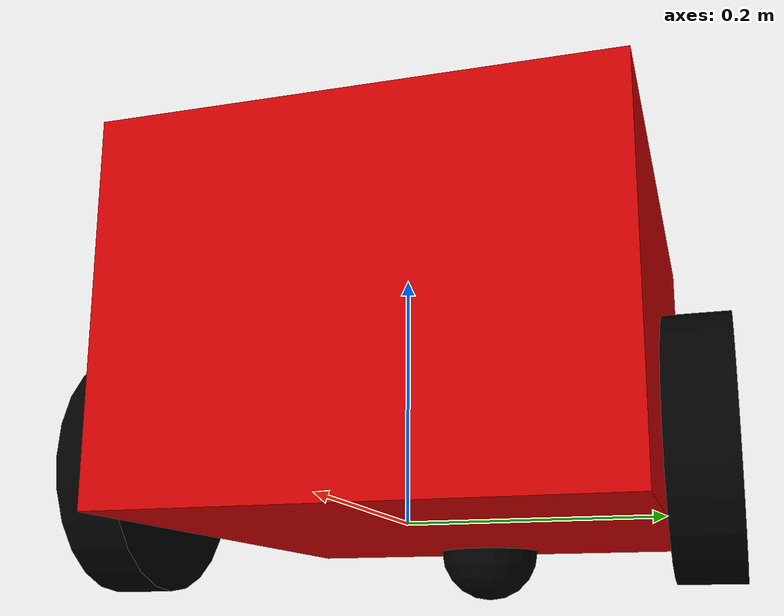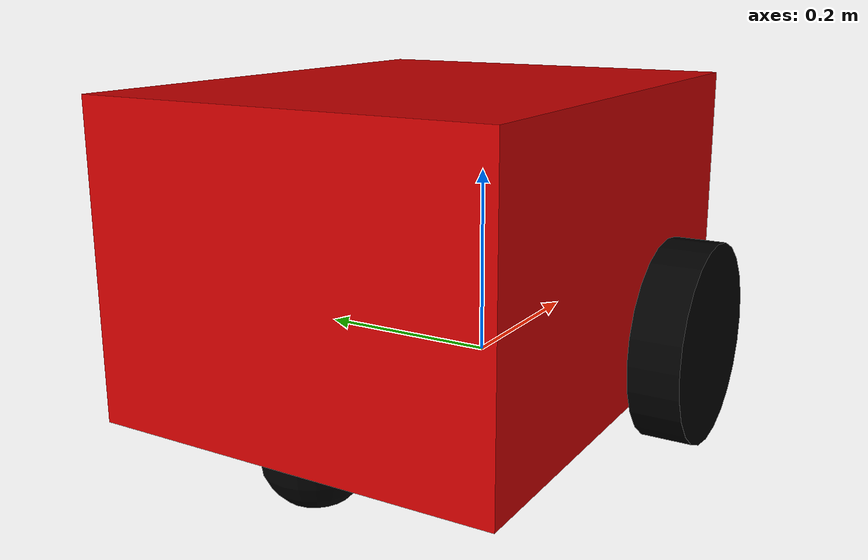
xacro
<?xml version="1.0"?>
<robot name="wheeled_robot" xmlns:xacro="http://ros.org/wiki/xacro">

  <xacro:arg name="namespace" default="" />
  <xacro:arg name="use_imu" default="false" />
  <xacro:arg name="use_lidar" default="false" />
  <xacro:arg name="use_rgb" default="false" />
  <xacro:arg name="use_rgbd" default="false" />
  <xacro:arg name="use_arms" default="false" />
  <xacro:arg name="use_pantilt" default="false" />

  <xacro:include filename="$(find marr_gz)/urdf/inertia.xacro" />
  <xacro:include filename="$(find marr_gz)/urdf/sensors.xacro" />
  <xacro:include filename="$(find marr_gz)/urdf/arms.xacro" />
  <xacro:include filename="$(find marr_gz)/urdf/pantilt.xacro" />

  <xacro:property name="friction" value="0.01" />
  <xacro:property name="damping" value="0.05" />
  <xacro:property name="max_effort" value="1000.0" />
  <xacro:property name="max_velocity" value="10.0" />

  <material name="orange"><color rgba="1.0 0.33 0.0 1.0"/></material>
  <material name="red"><color rgba="0.8 0 0 1"/></material>
  <material name="green"><color rgba="0 1 0 1"/></material>
  <material name="blue"><color rgba="0 0 1 1"/></material>
  <material name="black"><color rgba="0 0 0 1.0"/></material>
  <material name="grey"><color rgba="0.7 0.7 0.7 1.0"/></material>
  <material name="white"><color rgba="1 1 1 1.0"/></material>

  <link name="base_footprint"/>

  <link name="base_link">
    <visual>
        <geometry>
            <box size="0.5 0.4 0.3"/>
        </geometry>
        <origin xyz="0.0 0.0 0.0" rpy="0.0 0.0 0.0"/>
        <material name="red"/>
    </visual>
    <collision>
        <geometry>
            <box size="0.5 0.4 0.3"/>
        </geometry>
        <origin xyz="0.0 0.0 0.0" rpy="0.0 0.0 0.0"/>
    </collision>
    <xacro:box_inertial mass="0.2" x_dim="0.5" y_dim="0.4" z_dim="0.3"/>
  </link>

  <!-- to balance weight on the bottom and between the wheels -->
  <link name="battery_link">
    <visual>
        <geometry>
            <box size="0.1 0.2 0.1"/>
        </geometry>
        <origin xyz="0.0 0.0 0.0" rpy="0.0 0.0 0.0"/>
        <material name="black"/>
    </visual>
    <collision>
        <geometry>
            <box size="0.1 0.2 0.1"/>
        </geometry>
        <origin xyz="0.0 0.0 0.0" rpy="0.0 0.0 0.0"/>
    </collision>
    <xacro:box_inertial mass="0.5" x_dim="0.1" y_dim="0.2" z_dim="0.1"/>
  </link>

  <link name="left_wheel">
    <visual>
        <geometry>
            <cylinder radius="0.1" length="0.05"/>
        </geometry>
        <origin xyz="0.0 0.0 0.0" rpy="1.57 0.0 0.0"/>
        <material name="black"/>
    </visual>
    <collision>
        <geometry>
            <cylinder radius="0.1" length="0.05"/>
        </geometry>
        <origin xyz="0.0 0.0 0.0" rpy="1.57 0.0 0.0"/>
        <surface>
          <friction>
            <ode>
              <mu>1.0</mu>
              <mu2>1.0</mu2>
            </ode>
            <torsional>
              <ode/>
            </torsional>
          </friction>
        </surface>
    </collision>
    <xacro:cylinder_inertial mass="0.3" radius="0.1" length="0.05"/>
  </link>

  <link name="right_wheel">
    <visual>
        <geometry>
            <cylinder radius="0.1" length="0.05"/>
        </geometry>
        <origin xyz="0.0 0.0 0.0" rpy="1.57 0.0 0.0"/>
        <material name="black"/>
    </visual>
    <collision>
        <geometry>
            <cylinder radius="0.1" length="0.05"/>
        </geometry>
        <origin xyz="0.0 0.0 0.0" rpy="1.57 0.0 0.0"/>
        <surface>
          <friction>
            <ode>
              <mu>1.0</mu>
              <mu2>1.0</mu2>
            </ode>
            <torsional>
              <ode/>
            </torsional>
          </friction>
        </surface>
    </collision>
    <xacro:cylinder_inertial mass="0.3" radius="0.1" length="0.05"/>
  </link>

  <link name="caster_wheel">
    <visual>
        <geometry>
            <sphere radius="0.05"/>
        </geometry>
        <origin xyz="0.0 0.0 0.0" rpy="0.0 0.0 0.0"/>
        <material name="black"/>
    </visual>
    <collision>
        <geometry>
            <sphere radius="0.05"/>
        </geometry>
        <origin xyz="0.0 0.0 0.0" rpy="0.0 0.0 0.0"/>
        <surface>
          <friction>
            <ode>
              <mu>0.001</mu>
              <mu2>0.001</mu2>
            </ode>
            <torsional>
              <ode/>
            </torsional>
          </friction>
        </surface>
    </collision>
    <xacro:sphere_inertial mass="0.1" radius="0.05" />
  </link>

  <joint name="base_joint" type="fixed">
    <parent link="base_footprint"/>
    <child link="base_link"/>
    <origin xyz="-0.1 0.0 0.15" rpy="0.0 0.0 0.0"/>
  </joint>

  <joint name="battery_joint" type="fixed">
    <parent link="base_link"/>
    <child link="battery_link"/>
    <origin xyz="0.1 0.0 -0.08" rpy="0.0 0.0 0.0"/>
  </joint>

  <joint name="left_wheel_joint" type="continuous">
    <parent link="base_link"/>
    <child link="left_wheel"/>
    <origin xyz="0.1 0.23 -0.1" rpy="0 0.0 0.0"/>
    <axis xyz="0.0 1.0 0.0"/>
    <dynamics damping="0.2" friction="1.0"/>
    <limit effort="100" velocity="10.0"/>
  </joint>

  <joint name="right_wheel_joint" type="continuous">
    <parent link="base_link"/>
    <child link="right_wheel"/>
    <origin xyz="0.1 -0.23 -0.1" rpy="0 0.0 0.0"/>
    <axis xyz="0.0 1.0 0.0"/>
    <dynamics damping="0.2" friction="1.0"/>
    <limit effort="100" velocity="10.0"/>
  </joint>

  <joint name="caster_wheel_joint" type="fixed">
    <parent link="base_link"/>
    <child link="caster_wheel"/>
    <origin xyz="-0.2 0.0 -0.15" rpy="0.0 0.0 0.0"/>
  </joint>

  <xacro:if value="$(arg use_arms)">
    <xacro:arms />
  </xacro:if>

  <xacro:if value="$(arg use_pantilt)">
    <xacro:pantilt parent="base_link" x="0.0" y="0.0" z="0.152" />
  </xacro:if>

  <!-- sensors -->

  <xacro:if value="$(arg use_imu)">
    <xacro:imu parent="base_link" x="-0.1" y="0.0" z="0.152" />
  </xacro:if>

  <xacro:if value="$(arg use_lidar)">
    <xacro:lidar parent="base_link" x="0.1" y="0.0" z="0.155" />
  </xacro:if>

  <xacro:property name="u_rgb" value="$(arg use_rgb)"/>
  <xacro:property name="u_rgbd" value="$(arg use_rgbd)"/>
  <xacro:property name="u_pantilt" value="$(arg use_pantilt)"/>

  <xacro:if value="${u_rgb and u_pantilt}">
    <xacro:rgb parent="pantilt_tip_link" x="0.0" y="0.0" z="0.013" p="0" />
  </xacro:if>

  <xacro:if value="${u_rgb and not u_pantilt}">
    <xacro:camera_base parent="base_link" x="0.0" y="0.0" z="0.152" />
    <xacro:rgb parent="pantilt_tip_link" x="0.0" y="0.0" z="0.013" p="0" />
  </xacro:if>

  <xacro:if value="${u_rgbd and u_pantilt}">
    <xacro:rgbd parent="pantilt_tip_link" x="0.0" y="0.0" z="0.013" p="0" />
  </xacro:if>

  <xacro:if value="${u_rgbd and not u_pantilt}">
    <xacro:camera_base parent="base_link" x="0.0" y="0.0" z="0.152" />
    <xacro:rgbd parent="pantilt_tip_link" x="0.0" y="0.0" z="0.013" p="0" />
  </xacro:if>

  <ros2_control name="GazeboSimSystem" type="system">
    <hardware>
      <plugin>gz_ros2_control/GazeboSimSystem</plugin>
    </hardware>
    <joint name="left_wheel_joint">
      <command_interface name="velocity">
        <param name="min">-10</param>
        <param name="max">10</param>
      </command_interface>
      <state_interface name="position"/>
      <state_interface name="velocity"/>
    </joint>
    <joint name="right_wheel_joint">
      <command_interface name="velocity">
        <param name="min">-10</param>
        <param name="max">10</param>
      </command_interface>
      <state_interface name="position"/>
      <state_interface name="velocity"/>
    </joint>

    <xacro:if value="$(arg use_arms)">

    <joint name="left_arm_joint">
      <command_interface name="effort">
        <param name="min">-10</param>
        <param name="max">10</param>
      </command_interface>
      <command_interface name="velocity">
        <param name="min">-1</param>
        <param name="max">1</param>
      </command_interface>
      <command_interface name="position">
        <param name="min">-100</param>
        <param name="max">100</param>
      </command_interface>
      <state_interface name="position"/>
      <state_interface name="velocity"/>
    </joint>
    <joint name="right_arm_joint">
      <command_interface name="effort">
        <param name="min">-10</param>
        <param name="max">10</param>
      </command_interface>
      <command_interface name="velocity">
        <param name="min">-1</param>
        <param name="max">1</param>
      </command_interface>
      <command_interface name="position">
        <param name="min">-100</param>
        <param name="max">100</param>
      </command_interface>
      <state_interface name="position"/>
      <state_interface name="velocity"/>
    </joint>

    </xacro:if>

    <xacro:if value="$(arg use_pantilt)">

    <joint name="pantilt_pan_joint">
      <command_interface name="effort">
        <param name="min">-10</param>
        <param name="max">10</param>
      </command_interface>
      <command_interface name="velocity">
        <param name="min">-1</param>
        <param name="max">1</param>
      </command_interface>
      <command_interface name="position">
        <param name="min">-100</param>
        <param name="max">100</param>
      </command_interface>
      <state_interface name="position"/>
      <state_interface name="velocity"/>
    </joint>
    <joint name="pantilt_tilt_joint">
      <command_interface name="effort">
        <param name="min">-10</param>
        <param name="max">10</param>
      </command_interface>
      <command_interface name="velocity">
        <param name="min">-1</param>
        <param name="max">1</param>
      </command_interface>
      <command_interface name="position">
        <param name="min">-100</param>
        <param name="max">100</param>
      </command_interface>
      <state_interface name="position"/>
      <state_interface name="velocity"/>
    </joint>

    </xacro:if>

  </ros2_control>

  <gazebo>
    <!-- Joint state publisher -->
    <plugin filename="gz_ros2_control-system" name="gz_ros2_control::GazeboSimROS2ControlPlugin">
      <ros>
        <namespace>$(arg namespace)</namespace>
      </ros>
      <parameters>$(find marr_gz)/config/wheeled_controllers.yaml</parameters>
    </plugin>
  </gazebo>

  <gazebo>
    <!-- Ground truth publisher -->
    <plugin
        filename="gz-sim-pose-publisher-system"
        name="gz::sim::systems::PosePublisher">
        <use_pose_vector_msg>false</use_pose_vector_msg>
        <publish_model_pose>true</publish_model_pose>
        <publish_nested_model_pose>true</publish_nested_model_pose>
    </plugin>
  </gazebo>

  <xacro:if value="$(arg use_arms)">
    <gazebo>
       <plugin filename="gz-sim-detachable-joint-system"
               name="gz::sim::systems::DetachableJoint">
       <parent_link>left_arm_body</parent_link>
       <child_model>B1</child_model>
       <child_link>body</child_link>
       <detach_topic>/B1/detach</detach_topic>
       <attach_topic>/B1/attach</attach_topic>
       <output_topic>/B1/state</output_topic>
      </plugin>
    </gazebo>
  </xacro:if>

</robot>

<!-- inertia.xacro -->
<robot xmlns:xacro="http://ros.org/wiki/xacro">

  <xacro:macro name="sphere_inertial" params="mass radius">
    <inertial>
      <origin xyz="0 0 0" rpy="0 0 0"/> <mass value="${mass}"/>
      <inertia
        ixx="${(2/5) * mass * (radius*radius)}"
        ixy="0.0"
        ixz="0.0"
        iyy="${(2/5) * mass * (radius*radius)}"
        iyz="0.0"
        izz="${(2/5) * mass * (radius*radius)}"
      />
    </inertial>
  </xacro:macro>

  <xacro:macro name="cylinder_inertial" params="mass radius length">
    <inertial>
      <origin xyz="0 0 0" rpy="0 0 0"/>
      <mass value="${mass}"/>
      <inertia
        ixx="${(1/12) * mass * (3*radius*radius + length*length)}"
        ixy="0.0"
        ixz="0.0"
        iyy="${(1/12) * mass * (3*radius*radius + length*length)}"
        iyz="0.0"
        izz="${(1/2) * mass * (radius*radius)}"
      />
    </inertial>
  </xacro:macro>

  <xacro:macro name="box_inertial" params="mass x_dim y_dim z_dim">
    <inertial>
      <origin xyz="0 0 0" rpy="0 0 0"/>
      <mass value="${mass}"/>
      <inertia
        ixx="${(1/12) * mass * (y_dim*y_dim + z_dim*z_dim)}"
        ixy="0.0"
        ixz="0.0"
        iyy="${(1/12) * mass * (x_dim*x_dim + z_dim*z_dim)}"
        iyz="0.0"
        izz="${(1/12) * mass * (x_dim*x_dim + y_dim*y_dim)}"
      />
    </inertial>
  </xacro:macro>

</robot>
